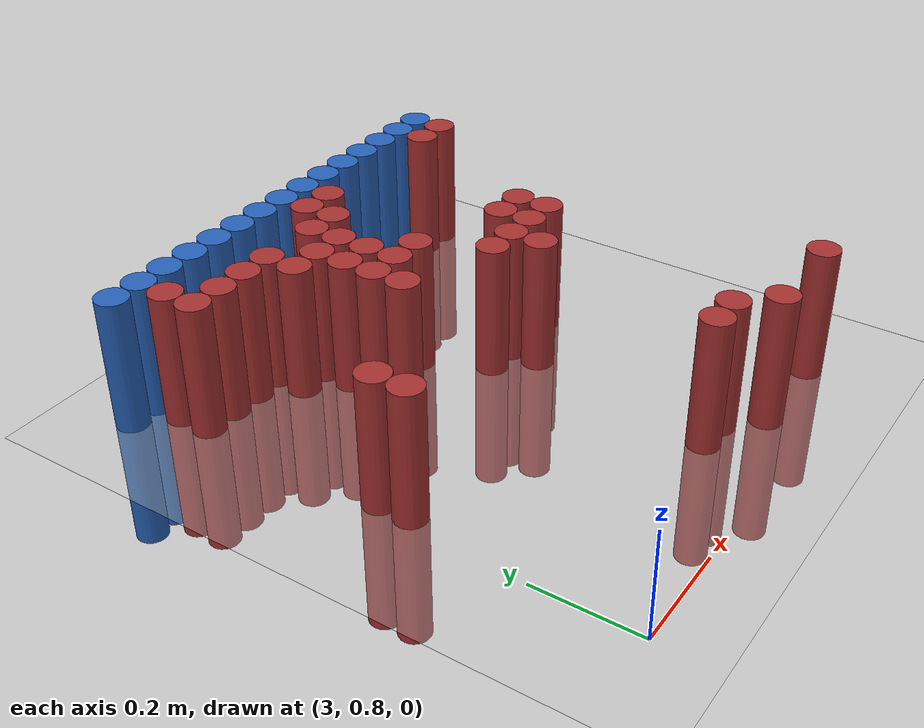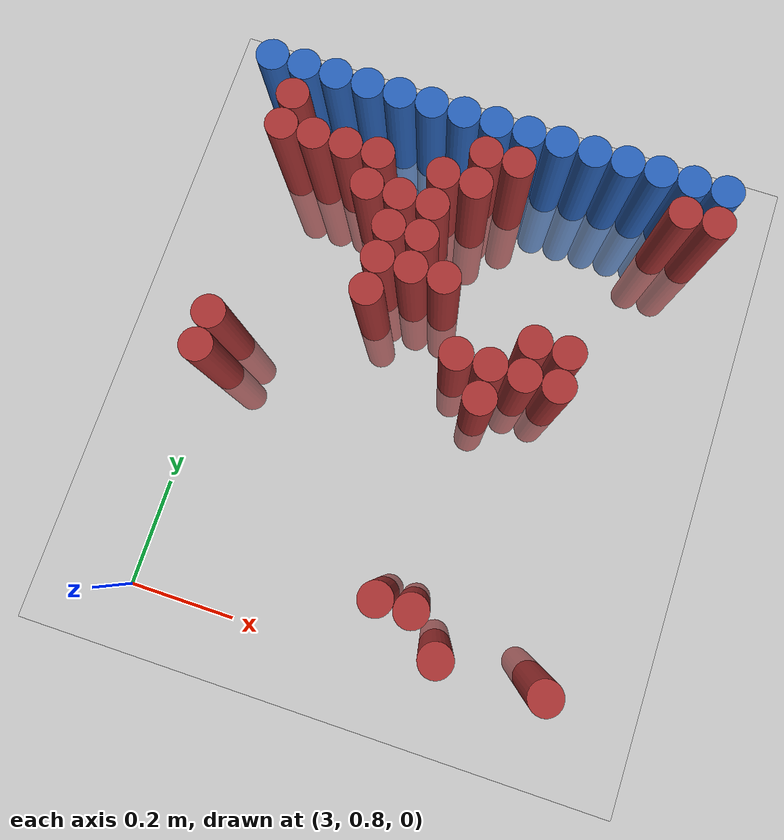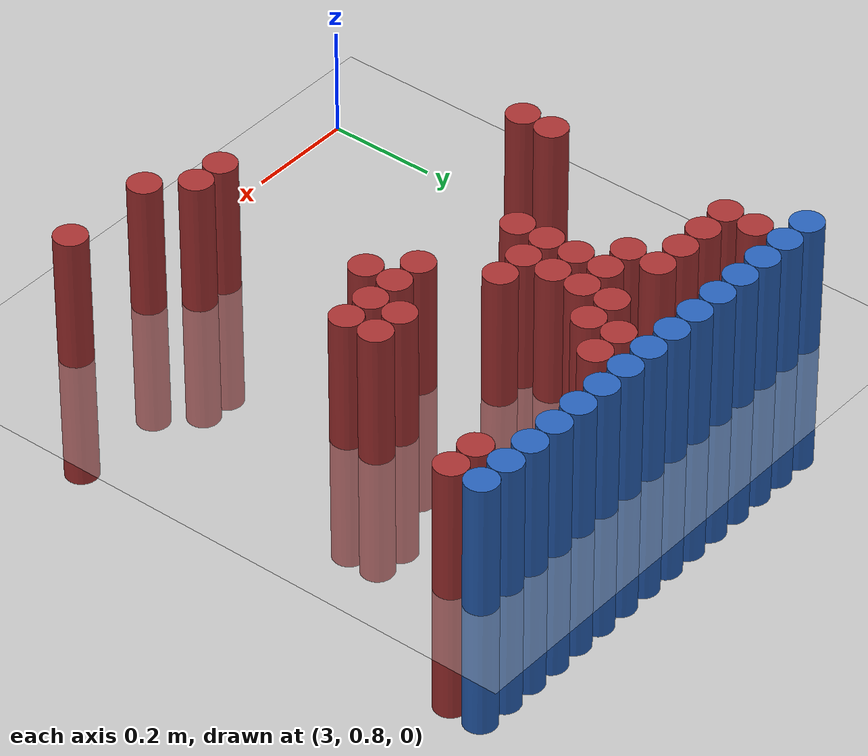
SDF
<sdf version="1.6">
 <world name="default">
  <model name="ground_plane">
   <static>1</static>
   <link name="link">
    <collision name="collision">
     <geometry><plane><normal>0 0 1</normal><size>100 100</size></plane></geometry>
     <surface><friction><ode><mu>100</mu><mu2>50</mu2></ode></friction></surface>
    </collision>
    <visual name="visual">
     <cast_shadows>0</cast_shadows>
     <geometry><plane><normal>0 0 1</normal><size>100 100</size></plane></geometry>
     <material>
      <script><uri>file://media/materials/scripts/gazebo.material</uri><name>Gazebo/Grey</name></script>
     </material>
    </visual>
   </link>
  </model>
  <model name="unit_cylinder_110">
   <static>1</static>
   <pose>2.970000 1.770000 0.000000 0.000000 0.000000 0.000000</pose>
   <link name="link">
    <inertial>
     <mass>1</mass>
     <inertia><ixx>0.145833</ixx><ixy>0</ixy><ixz>0</ixz><iyy>0.145833</iyy><iyz>0</iyz><izz>0.125</izz></inertia>
    </inertial>
    <collision name="collision">
     <geometry><cylinder><radius>0.030000</radius><length>0.5</length></cylinder></geometry>
    </collision>
    <visual name="visual">
     <geometry><cylinder><radius>0.030000</radius><length>0.5</length></cylinder></geometry>
     <material>
      <ambient>0.152000 0.379000 0.720000 1</ambient>
      <diffuse>0.152000 0.379000 0.720000 1</diffuse>
     </material>
     <material>
      <script><name>Gazebo/Grey</name><uri>file://media/materials/scripts/gazebo.material</uri></script>
     </material>
    </visual>
   </link>
  </model>
  <model name="unit_cylinder_111">
   <static>1</static>
   <pose>3.030000 1.770000 0.000000 0.000000 0.000000 0.000000</pose>
   <link name="link">
    <inertial>
     <mass>1</mass>
     <inertia><ixx>0.145833</ixx><ixy>0</ixy><ixz>0</ixz><iyy>0.145833</iyy><iyz>0</iyz><izz>0.125</izz></inertia>
    </inertial>
    <collision name="collision">
     <geometry><cylinder><radius>0.030000</radius><length>0.5</length></cylinder></geometry>
    </collision>
    <visual name="visual">
     <geometry><cylinder><radius>0.030000</radius><length>0.5</length></cylinder></geometry>
     <material>
      <ambient>0.152000 0.379000 0.720000 1</ambient>
      <diffuse>0.152000 0.379000 0.720000 1</diffuse>
     </material>
     <material>
      <script><name>Gazebo/Grey</name><uri>file://media/materials/scripts/gazebo.material</uri></script>
     </material>
    </visual>
   </link>
  </model>
  <model name="unit_cylinder_112">
   <static>1</static>
   <pose>3.090000 1.770000 0.000000 0.000000 0.000000 0.000000</pose>
   <link name="link">
    <inertial>
     <mass>1</mass>
     <inertia><ixx>0.145833</ixx><ixy>0</ixy><ixz>0</ixz><iyy>0.145833</iyy><iyz>0</iyz><izz>0.125</izz></inertia>
    </inertial>
    <collision name="collision">
     <geometry><cylinder><radius>0.030000</radius><length>0.5</length></cylinder></geometry>
    </collision>
    <visual name="visual">
     <geometry><cylinder><radius>0.030000</radius><length>0.5</length></cylinder></geometry>
     <material>
      <ambient>0.152000 0.379000 0.720000 1</ambient>
      <diffuse>0.152000 0.379000 0.720000 1</diffuse>
     </material>
     <material>
      <script><name>Gazebo/Grey</name><uri>file://media/materials/scripts/gazebo.material</uri></script>
     </material>
    </visual>
   </link>
  </model>
  <model name="unit_cylinder_113">
   <static>1</static>
   <pose>3.150000 1.770000 0.000000 0.000000 0.000000 0.000000</pose>
   <link name="link">
    <inertial>
     <mass>1</mass>
     <inertia><ixx>0.145833</ixx><ixy>0</ixy><ixz>0</ixz><iyy>0.145833</iyy><iyz>0</iyz><izz>0.125</izz></inertia>
    </inertial>
    <collision name="collision">
     <geometry><cylinder><radius>0.030000</radius><length>0.5</length></cylinder></geometry>
    </collision>
    <visual name="visual">
     <geometry><cylinder><radius>0.030000</radius><length>0.5</length></cylinder></geometry>
     <material>
      <ambient>0.152000 0.379000 0.720000 1</ambient>
      <diffuse>0.152000 0.379000 0.720000 1</diffuse>
     </material>
     <material>
      <script><name>Gazebo/Grey</name><uri>file://media/materials/scripts/gazebo.material</uri></script>
     </material>
    </visual>
   </link>
  </model>
  <model name="unit_cylinder_114">
   <static>1</static>
   <pose>3.210000 1.770000 0.000000 0.000000 0.000000 0.000000</pose>
   <link name="link">
    <inertial>
     <mass>1</mass>
     <inertia><ixx>0.145833</ixx><ixy>0</ixy><ixz>0</ixz><iyy>0.145833</iyy><iyz>0</iyz><izz>0.125</izz></inertia>
    </inertial>
    <collision name="collision">
     <geometry><cylinder><radius>0.030000</radius><length>0.5</length></cylinder></geometry>
    </collision>
    <visual name="visual">
     <geometry><cylinder><radius>0.030000</radius><length>0.5</length></cylinder></geometry>
     <material>
      <ambient>0.152000 0.379000 0.720000 1</ambient>
      <diffuse>0.152000 0.379000 0.720000 1</diffuse>
     </material>
     <material>
      <script><name>Gazebo/Grey</name><uri>file://media/materials/scripts/gazebo.material</uri></script>
     </material>
    </visual>
   </link>
  </model>
  <model name="unit_cylinder_115">
   <static>1</static>
   <pose>3.270000 1.770000 0.000000 0.000000 0.000000 0.000000</pose>
   <link name="link">
    <inertial>
     <mass>1</mass>
     <inertia><ixx>0.145833</ixx><ixy>0</ixy><ixz>0</ixz><iyy>0.145833</iyy><iyz>0</iyz><izz>0.125</izz></inertia>
    </inertial>
    <collision name="collision">
     <geometry><cylinder><radius>0.030000</radius><length>0.5</length></cylinder></geometry>
    </collision>
    <visual name="visual">
     <geometry><cylinder><radius>0.030000</radius><length>0.5</length></cylinder></geometry>
     <material>
      <ambient>0.152000 0.379000 0.720000 1</ambient>
      <diffuse>0.152000 0.379000 0.720000 1</diffuse>
     </material>
     <material>
      <script><name>Gazebo/Grey</name><uri>file://media/materials/scripts/gazebo.material</uri></script>
     </material>
    </visual>
   </link>
  </model>
  <model name="unit_cylinder_116">
   <static>1</static>
   <pose>3.330000 1.770000 0.000000 0.000000 0.000000 0.000000</pose>
   <link name="link">
    <inertial>
     <mass>1</mass>
     <inertia><ixx>0.145833</ixx><ixy>0</ixy><ixz>0</ixz><iyy>0.145833</iyy><iyz>0</iyz><izz>0.125</izz></inertia>
    </inertial>
    <collision name="collision">
     <geometry><cylinder><radius>0.030000</radius><length>0.5</length></cylinder></geometry>
    </collision>
    <visual name="visual">
     <geometry><cylinder><radius>0.030000</radius><length>0.5</length></cylinder></geometry>
     <material>
      <ambient>0.152000 0.379000 0.720000 1</ambient>
      <diffuse>0.152000 0.379000 0.720000 1</diffuse>
     </material>
     <material>
      <script><name>Gazebo/Grey</name><uri>file://media/materials/scripts/gazebo.material</uri></script>
     </material>
    </visual>
   </link>
  </model>
  <model name="unit_cylinder_117">
   <static>1</static>
   <pose>3.390000 1.770000 0.000000 0.000000 0.000000 0.000000</pose>
   <link name="link">
    <inertial>
     <mass>1</mass>
     <inertia><ixx>0.145833</ixx><ixy>0</ixy><ixz>0</ixz><iyy>0.145833</iyy><iyz>0</iyz><izz>0.125</izz></inertia>
    </inertial>
    <collision name="collision">
     <geometry><cylinder><radius>0.030000</radius><length>0.5</length></cylinder></geometry>
    </collision>
    <visual name="visual">
     <geometry><cylinder><radius>0.030000</radius><length>0.5</length></cylinder></geometry>
     <material>
      <ambient>0.152000 0.379000 0.720000 1</ambient>
      <diffuse>0.152000 0.379000 0.720000 1</diffuse>
     </material>
     <material>
      <script><name>Gazebo/Grey</name><uri>file://media/materials/scripts/gazebo.material</uri></script>
     </material>
    </visual>
   </link>
  </model>
  <model name="unit_cylinder_118">
   <static>1</static>
   <pose>3.450000 1.770000 0.000000 0.000000 0.000000 0.000000</pose>
   <link name="link">
    <inertial>
     <mass>1</mass>
     <inertia><ixx>0.145833</ixx><ixy>0</ixy><ixz>0</ixz><iyy>0.145833</iyy><iyz>0</iyz><izz>0.125</izz></inertia>
    </inertial>
    <collision name="collision">
     <geometry><cylinder><radius>0.030000</radius><length>0.5</length></cylinder></geometry>
    </collision>
    <visual name="visual">
     <geometry><cylinder><radius>0.030000</radius><length>0.5</length></cylinder></geometry>
     <material>
      <ambient>0.152000 0.379000 0.720000 1</ambient>
      <diffuse>0.152000 0.379000 0.720000 1</diffuse>
     </material>
     <material>
      <script><name>Gazebo/Grey</name><uri>file://media/materials/scripts/gazebo.material</uri></script>
     </material>
    </visual>
   </link>
  </model>
  <model name="unit_cylinder_119">
   <static>1</static>
   <pose>3.510000 1.770000 0.000000 0.000000 0.000000 0.000000</pose>
   <link name="link">
    <inertial>
     <mass>1</mass>
     <inertia><ixx>0.145833</ixx><ixy>0</ixy><ixz>0</ixz><iyy>0.145833</iyy><iyz>0</iyz><izz>0.125</izz></inertia>
    </inertial>
    <collision name="collision">
     <geometry><cylinder><radius>0.030000</radius><length>0.5</length></cylinder></geometry>
    </collision>
    <visual name="visual">
     <geometry><cylinder><radius>0.030000</radius><length>0.5</length></cylinder></geometry>
     <material>
      <ambient>0.152000 0.379000 0.720000 1</ambient>
      <diffuse>0.152000 0.379000 0.720000 1</diffuse>
     </material>
     <material>
      <script><name>Gazebo/Grey</name><uri>file://media/materials/scripts/gazebo.material</uri></script>
     </material>
    </visual>
   </link>
  </model>
  <model name="unit_cylinder_120">
   <static>1</static>
   <pose>3.570000 1.770000 0.000000 0.000000 0.000000 0.000000</pose>
   <link name="link">
    <inertial>
     <mass>1</mass>
     <inertia><ixx>0.145833</ixx><ixy>0</ixy><ixz>0</ixz><iyy>0.145833</iyy><iyz>0</iyz><izz>0.125</izz></inertia>
    </inertial>
    <collision name="collision">
     <geometry><cylinder><radius>0.030000</radius><length>0.5</length></cylinder></geometry>
    </collision>
    <visual name="visual">
     <geometry><cylinder><radius>0.030000</radius><length>0.5</length></cylinder></geometry>
     <material>
      <ambient>0.152000 0.379000 0.720000 1</ambient>
      <diffuse>0.152000 0.379000 0.720000 1</diffuse>
     </material>
     <material>
      <script><name>Gazebo/Grey</name><uri>file://media/materials/scripts/gazebo.material</uri></script>
     </material>
    </visual>
   </link>
  </model>
  <model name="unit_cylinder_121">
   <static>1</static>
   <pose>3.630000 1.770000 0.000000 0.000000 0.000000 0.000000</pose>
   <link name="link">
    <inertial>
     <mass>1</mass>
     <inertia><ixx>0.145833</ixx><ixy>0</ixy><ixz>0</ixz><iyy>0.145833</iyy><iyz>0</iyz><izz>0.125</izz></inertia>
    </inertial>
    <collision name="collision">
     <geometry><cylinder><radius>0.030000</radius><length>0.5</length></cylinder></geometry>
    </collision>
    <visual name="visual">
     <geometry><cylinder><radius>0.030000</radius><length>0.5</length></cylinder></geometry>
     <material>
      <ambient>0.152000 0.379000 0.720000 1</ambient>
      <diffuse>0.152000 0.379000 0.720000 1</diffuse>
     </material>
     <material>
      <script><name>Gazebo/Grey</name><uri>file://media/materials/scripts/gazebo.material</uri></script>
     </material>
    </visual>
   </link>
  </model>
  <model name="unit_cylinder_122">
   <static>1</static>
   <pose>3.690000 1.770000 0.000000 0.000000 0.000000 0.000000</pose>
   <link name="link">
    <inertial>
     <mass>1</mass>
     <inertia><ixx>0.145833</ixx><ixy>0</ixy><ixz>0</ixz><iyy>0.145833</iyy><iyz>0</iyz><izz>0.125</izz></inertia>
    </inertial>
    <collision name="collision">
     <geometry><cylinder><radius>0.030000</radius><length>0.5</length></cylinder></geometry>
    </collision>
    <visual name="visual">
     <geometry><cylinder><radius>0.030000</radius><length>0.5</length></cylinder></geometry>
     <material>
      <ambient>0.152000 0.379000 0.720000 1</ambient>
      <diffuse>0.152000 0.379000 0.720000 1</diffuse>
     </material>
     <material>
      <script><name>Gazebo/Grey</name><uri>file://media/materials/scripts/gazebo.material</uri></script>
     </material>
    </visual>
   </link>
  </model>
  <model name="unit_cylinder_123">
   <static>1</static>
   <pose>3.750000 1.770000 0.000000 0.000000 0.000000 0.000000</pose>
   <link name="link">
    <inertial>
     <mass>1</mass>
     <inertia><ixx>0.145833</ixx><ixy>0</ixy><ixz>0</ixz><iyy>0.145833</iyy><iyz>0</iyz><izz>0.125</izz></inertia>
    </inertial>
    <collision name="collision">
     <geometry><cylinder><radius>0.030000</radius><length>0.5</length></cylinder></geometry>
    </collision>
    <visual name="visual">
     <geometry><cylinder><radius>0.030000</radius><length>0.5</length></cylinder></geometry>
     <material>
      <ambient>0.152000 0.379000 0.720000 1</ambient>
      <diffuse>0.152000 0.379000 0.720000 1</diffuse>
     </material>
     <material>
      <script><name>Gazebo/Grey</name><uri>file://media/materials/scripts/gazebo.material</uri></script>
     </material>
    </visual>
   </link>
  </model>
  <model name="unit_cylinder_124">
   <static>1</static>
   <pose>3.810000 1.770000 0.000000 0.000000 0.000000 0.000000</pose>
   <link name="link">
    <inertial>
     <mass>1</mass>
     <inertia><ixx>0.145833</ixx><ixy>0</ixy><ixz>0</ixz><iyy>0.145833</iyy><iyz>0</iyz><izz>0.125</izz></inertia>
    </inertial>
    <collision name="collision">
     <geometry><cylinder><radius>0.030000</radius><length>0.5</length></cylinder></geometry>
    </collision>
    <visual name="visual">
     <geometry><cylinder><radius>0.030000</radius><length>0.5</length></cylinder></geometry>
     <material>
      <ambient>0.152000 0.379000 0.720000 1</ambient>
      <diffuse>0.152000 0.379000 0.720000 1</diffuse>
     </material>
     <material>
      <script><name>Gazebo/Grey</name><uri>file://media/materials/scripts/gazebo.material</uri></script>
     </material>
    </visual>
   </link>
  </model>
  <model name="unit_cylinder_129">
   <static>1</static>
   <pose>3.030000 1.710000 0.000000 0.000000 0.000000 0.000000</pose>
   <link name="link">
    <inertial>
     <mass>1</mass>
     <inertia><ixx>0.145833</ixx><ixy>0</ixy><ixz>0</ixz><iyy>0.145833</iyy><iyz>0</iyz><izz>0.125</izz></inertia>
    </inertial>
    <collision name="collision">
     <geometry><cylinder><radius>0.030000</radius><length>0.5</length></cylinder></geometry>
    </collision>
    <visual name="visual">
     <geometry><cylinder><radius>0.030000</radius><length>0.5</length></cylinder></geometry>
     <material>
      <ambient>0.648000 0.192000 0.192000 1</ambient>
      <diffuse>0.648000 0.192000 0.192000 1</diffuse>
     </material>
     <material>
      <script><name>Gazebo/Grey</name><uri>file://media/materials/scripts/gazebo.material</uri></script>
     </material>
    </visual>
   </link>
  </model>
  <model name="unit_cylinder_130">
   <static>1</static>
   <pose>3.390000 1.710000 0.000000 0.000000 0.000000 0.000000</pose>
   <link name="link">
    <inertial>
     <mass>1</mass>
     <inertia><ixx>0.145833</ixx><ixy>0</ixy><ixz>0</ixz><iyy>0.145833</iyy><iyz>0</iyz><izz>0.125</izz></inertia>
    </inertial>
    <collision name="collision">
     <geometry><cylinder><radius>0.030000</radius><length>0.5</length></cylinder></geometry>
    </collision>
    <visual name="visual">
     <geometry><cylinder><radius>0.030000</radius><length>0.5</length></cylinder></geometry>
     <material>
      <ambient>0.648000 0.192000 0.192000 1</ambient>
      <diffuse>0.648000 0.192000 0.192000 1</diffuse>
     </material>
     <material>
      <script><name>Gazebo/Grey</name><uri>file://media/materials/scripts/gazebo.material</uri></script>
     </material>
    </visual>
   </link>
  </model>
  <model name="unit_cylinder_131">
   <static>1</static>
   <pose>3.450000 1.710000 0.000000 0.000000 0.000000 0.000000</pose>
   <link name="link">
    <inertial>
     <mass>1</mass>
     <inertia><ixx>0.145833</ixx><ixy>0</ixy><ixz>0</ixz><iyy>0.145833</iyy><iyz>0</iyz><izz>0.125</izz></inertia>
    </inertial>
    <collision name="collision">
     <geometry><cylinder><radius>0.030000</radius><length>0.5</length></cylinder></geometry>
    </collision>
    <visual name="visual">
     <geometry><cylinder><radius>0.030000</radius><length>0.5</length></cylinder></geometry>
     <material>
      <ambient>0.648000 0.192000 0.192000 1</ambient>
      <diffuse>0.648000 0.192000 0.192000 1</diffuse>
     </material>
     <material>
      <script><name>Gazebo/Grey</name><uri>file://media/materials/scripts/gazebo.material</uri></script>
     </material>
    </visual>
   </link>
  </model>
  <model name="unit_cylinder_132">
   <static>1</static>
   <pose>3.750000 1.710000 0.000000 0.000000 0.000000 0.000000</pose>
   <link name="link">
    <inertial>
     <mass>1</mass>
     <inertia><ixx>0.145833</ixx><ixy>0</ixy><ixz>0</ixz><iyy>0.145833</iyy><iyz>0</iyz><izz>0.125</izz></inertia>
    </inertial>
    <collision name="collision">
     <geometry><cylinder><radius>0.030000</radius><length>0.5</length></cylinder></geometry>
    </collision>
    <visual name="visual">
     <geometry><cylinder><radius>0.030000</radius><length>0.5</length></cylinder></geometry>
     <material>
      <ambient>0.648000 0.192000 0.192000 1</ambient>
      <diffuse>0.648000 0.192000 0.192000 1</diffuse>
     </material>
     <material>
      <script><name>Gazebo/Grey</name><uri>file://media/materials/scripts/gazebo.material</uri></script>
     </material>
    </visual>
   </link>
  </model>
  <model name="unit_cylinder_133">
   <static>1</static>
   <pose>3.810000 1.710000 0.000000 0.000000 0.000000 0.000000</pose>
   <link name="link">
    <inertial>
     <mass>1</mass>
     <inertia><ixx>0.145833</ixx><ixy>0</ixy><ixz>0</ixz><iyy>0.145833</iyy><iyz>0</iyz><izz>0.125</izz></inertia>
    </inertial>
    <collision name="collision">
     <geometry><cylinder><radius>0.030000</radius><length>0.5</length></cylinder></geometry>
    </collision>
    <visual name="visual">
     <geometry><cylinder><radius>0.030000</radius><length>0.5</length></cylinder></geometry>
     <material>
      <ambient>0.648000 0.192000 0.192000 1</ambient>
      <diffuse>0.648000 0.192000 0.192000 1</diffuse>
     </material>
     <material>
      <script><name>Gazebo/Grey</name><uri>file://media/materials/scripts/gazebo.material</uri></script>
     </material>
    </visual>
   </link>
  </model>
  <model name="unit_cylinder_140">
   <static>1</static>
   <pose>3.030000 1.650000 0.000000 0.000000 0.000000 0.000000</pose>
   <link name="link">
    <inertial>
     <mass>1</mass>
     <inertia><ixx>0.145833</ixx><ixy>0</ixy><ixz>0</ixz><iyy>0.145833</iyy><iyz>0</iyz><izz>0.125</izz></inertia>
    </inertial>
    <collision name="collision">
     <geometry><cylinder><radius>0.030000</radius><length>0.5</length></cylinder></geometry>
    </collision>
    <visual name="visual">
     <geometry><cylinder><radius>0.030000</radius><length>0.5</length></cylinder></geometry>
     <material>
      <ambient>0.648000 0.192000 0.192000 1</ambient>
      <diffuse>0.648000 0.192000 0.192000 1</diffuse>
     </material>
     <material>
      <script><name>Gazebo/Grey</name><uri>file://media/materials/scripts/gazebo.material</uri></script>
     </material>
    </visual>
   </link>
  </model>
  <model name="unit_cylinder_141">
   <static>1</static>
   <pose>3.090000 1.650000 0.000000 0.000000 0.000000 0.000000</pose>
   <link name="link">
    <inertial>
     <mass>1</mass>
     <inertia><ixx>0.145833</ixx><ixy>0</ixy><ixz>0</ixz><iyy>0.145833</iyy><iyz>0</iyz><izz>0.125</izz></inertia>
    </inertial>
    <collision name="collision">
     <geometry><cylinder><radius>0.030000</radius><length>0.5</length></cylinder></geometry>
    </collision>
    <visual name="visual">
     <geometry><cylinder><radius>0.030000</radius><length>0.5</length></cylinder></geometry>
     <material>
      <ambient>0.648000 0.192000 0.192000 1</ambient>
      <diffuse>0.648000 0.192000 0.192000 1</diffuse>
     </material>
     <material>
      <script><name>Gazebo/Grey</name><uri>file://media/materials/scripts/gazebo.material</uri></script>
     </material>
    </visual>
   </link>
  </model>
  <model name="unit_cylinder_142">
   <static>1</static>
   <pose>3.150000 1.650000 0.000000 0.000000 0.000000 0.000000</pose>
   <link name="link">
    <inertial>
     <mass>1</mass>
     <inertia><ixx>0.145833</ixx><ixy>0</ixy><ixz>0</ixz><iyy>0.145833</iyy><iyz>0</iyz><izz>0.125</izz></inertia>
    </inertial>
    <collision name="collision">
     <geometry><cylinder><radius>0.030000</radius><length>0.5</length></cylinder></geometry>
    </collision>
    <visual name="visual">
     <geometry><cylinder><radius>0.030000</radius><length>0.5</length></cylinder></geometry>
     <material>
      <ambient>0.648000 0.192000 0.192000 1</ambient>
      <diffuse>0.648000 0.192000 0.192000 1</diffuse>
     </material>
     <material>
      <script><name>Gazebo/Grey</name><uri>file://media/materials/scripts/gazebo.material</uri></script>
     </material>
    </visual>
   </link>
  </model>
  <model name="unit_cylinder_143">
   <static>1</static>
   <pose>3.210000 1.650000 0.000000 0.000000 0.000000 0.000000</pose>
   <link name="link">
    <inertial>
     <mass>1</mass>
     <inertia><ixx>0.145833</ixx><ixy>0</ixy><ixz>0</ixz><iyy>0.145833</iyy><iyz>0</iyz><izz>0.125</izz></inertia>
    </inertial>
    <collision name="collision">
     <geometry><cylinder><radius>0.030000</radius><length>0.5</length></cylinder></geometry>
    </collision>
    <visual name="visual">
     <geometry><cylinder><radius>0.030000</radius><length>0.5</length></cylinder></geometry>
     <material>
      <ambient>0.648000 0.192000 0.192000 1</ambient>
      <diffuse>0.648000 0.192000 0.192000 1</diffuse>
     </material>
     <material>
      <script><name>Gazebo/Grey</name><uri>file://media/materials/scripts/gazebo.material</uri></script>
     </material>
    </visual>
   </link>
  </model>
  <model name="unit_cylinder_144">
   <static>1</static>
   <pose>3.330000 1.650000 0.000000 0.000000 0.000000 0.000000</pose>
   <link name="link">
    <inertial>
     <mass>1</mass>
     <inertia><ixx>0.145833</ixx><ixy>0</ixy><ixz>0</ixz><iyy>0.145833</iyy><iyz>0</iyz><izz>0.125</izz></inertia>
    </inertial>
    <collision name="collision">
     <geometry><cylinder><radius>0.030000</radius><length>0.5</length></cylinder></geometry>
    </collision>
    <visual name="visual">
     <geometry><cylinder><radius>0.030000</radius><length>0.5</length></cylinder></geometry>
     <material>
      <ambient>0.648000 0.192000 0.192000 1</ambient>
      <diffuse>0.648000 0.192000 0.192000 1</diffuse>
     </material>
     <material>
      <script><name>Gazebo/Grey</name><uri>file://media/materials/scripts/gazebo.material</uri></script>
     </material>
    </visual>
   </link>
  </model>
  <model name="unit_cylinder_145">
   <static>1</static>
   <pose>3.390000 1.650000 0.000000 0.000000 0.000000 0.000000</pose>
   <link name="link">
    <inertial>
     <mass>1</mass>
     <inertia><ixx>0.145833</ixx><ixy>0</ixy><ixz>0</ixz><iyy>0.145833</iyy><iyz>0</iyz><izz>0.125</izz></inertia>
    </inertial>
    <collision name="collision">
     <geometry><cylinder><radius>0.030000</radius><length>0.5</length></cylinder></geometry>
    </collision>
    <visual name="visual">
     <geometry><cylinder><radius>0.030000</radius><length>0.5</length></cylinder></geometry>
     <material>
      <ambient>0.648000 0.192000 0.192000 1</ambient>
      <diffuse>0.648000 0.192000 0.192000 1</diffuse>
     </material>
     <material>
      <script><name>Gazebo/Grey</name><uri>file://media/materials/scripts/gazebo.material</uri></script>
     </material>
    </visual>
   </link>
  </model>
  <model name="unit_cylinder_155">
   <static>1</static>
   <pose>3.210000 1.590000 0.000000 0.000000 0.000000 0.000000</pose>
   <link name="link">
    <inertial>
     <mass>1</mass>
     <inertia><ixx>0.145833</ixx><ixy>0</ixy><ixz>0</ixz><iyy>0.145833</iyy><iyz>0</iyz><izz>0.125</izz></inertia>
    </inertial>
    <collision name="collision">
     <geometry><cylinder><radius>0.030000</radius><length>0.5</length></cylinder></geometry>
    </collision>
    <visual name="visual">
     <geometry><cylinder><radius>0.030000</radius><length>0.5</length></cylinder></geometry>
     <material>
      <ambient>0.648000 0.192000 0.192000 1</ambient>
      <diffuse>0.648000 0.192000 0.192000 1</diffuse>
     </material>
     <material>
      <script><name>Gazebo/Grey</name><uri>file://media/materials/scripts/gazebo.material</uri></script>
     </material>
    </visual>
   </link>
  </model>
  <model name="unit_cylinder_156">
   <static>1</static>
   <pose>3.270000 1.590000 0.000000 0.000000 0.000000 0.000000</pose>
   <link name="link">
    <inertial>
     <mass>1</mass>
     <inertia><ixx>0.145833</ixx><ixy>0</ixy><ixz>0</ixz><iyy>0.145833</iyy><iyz>0</iyz><izz>0.125</izz></inertia>
    </inertial>
    <collision name="collision">
     <geometry><cylinder><radius>0.030000</radius><length>0.5</length></cylinder></geometry>
    </collision>
    <visual name="visual">
     <geometry><cylinder><radius>0.030000</radius><length>0.5</length></cylinder></geometry>
     <material>
      <ambient>0.648000 0.192000 0.192000 1</ambient>
      <diffuse>0.648000 0.192000 0.192000 1</diffuse>
     </material>
     <material>
      <script><name>Gazebo/Grey</name><uri>file://media/materials/scripts/gazebo.material</uri></script>
     </material>
    </visual>
   </link>
  </model>
  <model name="unit_cylinder_157">
   <static>1</static>
   <pose>3.330000 1.590000 0.000000 0.000000 0.000000 0.000000</pose>
   <link name="link">
    <inertial>
     <mass>1</mass>
     <inertia><ixx>0.145833</ixx><ixy>0</ixy><ixz>0</ixz><iyy>0.145833</iyy><iyz>0</iyz><izz>0.125</izz></inertia>
    </inertial>
    <collision name="collision">
     <geometry><cylinder><radius>0.030000</radius><length>0.5</length></cylinder></geometry>
    </collision>
    <visual name="visual">
     <geometry><cylinder><radius>0.030000</radius><length>0.5</length></cylinder></geometry>
     <material>
      <ambient>0.648000 0.192000 0.192000 1</ambient>
      <diffuse>0.648000 0.192000 0.192000 1</diffuse>
     </material>
     <material>
      <script><name>Gazebo/Grey</name><uri>file://media/materials/scripts/gazebo.material</uri></script>
     </material>
    </visual>
   </link>
  </model>
  <model name="unit_cylinder_163">
   <static>1</static>
   <pose>3.270000 1.530000 0.000000 0.000000 0.000000 0.000000</pose>
   <link name="link">
    <inertial>
     <mass>1</mass>
     <inertia><ixx>0.145833</ixx><ixy>0</ixy><ixz>0</ixz><iyy>0.145833</iyy><iyz>0</iyz><izz>0.125</izz></inertia>
    </inertial>
    <collision name="collision">
     <geometry><cylinder><radius>0.030000</radius><length>0.5</length></cylinder></geometry>
    </collision>
    <visual name="visual">
     <geometry><cylinder><radius>0.030000</radius><length>0.5</length></cylinder></geometry>
     <material>
      <ambient>0.648000 0.192000 0.192000 1</ambient>
      <diffuse>0.648000 0.192000 0.192000 1</diffuse>
     </material>
     <material>
      <script><name>Gazebo/Grey</name><uri>file://media/materials/scripts/gazebo.material</uri></script>
     </material>
    </visual>
   </link>
  </model>
  <model name="unit_cylinder_164">
   <static>1</static>
   <pose>3.330000 1.530000 0.000000 0.000000 0.000000 0.000000</pose>
   <link name="link">
    <inertial>
     <mass>1</mass>
     <inertia><ixx>0.145833</ixx><ixy>0</ixy><ixz>0</ixz><iyy>0.145833</iyy><iyz>0</iyz><izz>0.125</izz></inertia>
    </inertial>
    <collision name="collision">
     <geometry><cylinder><radius>0.030000</radius><length>0.5</length></cylinder></geometry>
    </collision>
    <visual name="visual">
     <geometry><cylinder><radius>0.030000</radius><length>0.5</length></cylinder></geometry>
     <material>
      <ambient>0.648000 0.192000 0.192000 1</ambient>
      <diffuse>0.648000 0.192000 0.192000 1</diffuse>
     </material>
     <material>
      <script><name>Gazebo/Grey</name><uri>file://media/materials/scripts/gazebo.material</uri></script>
     </material>
    </visual>
   </link>
  </model>
  <model name="unit_cylinder_168">
   <static>1</static>
   <pose>3.270000 1.470000 0.000000 0.000000 0.000000 0.000000</pose>
   <link name="link">
    <inertial>
     <mass>1</mass>
     <inertia><ixx>0.145833</ixx><ixy>0</ixy><ixz>0</ixz><iyy>0.145833</iyy><iyz>0</iyz><izz>0.125</izz></inertia>
    </inertial>
    <collision name="collision">
     <geometry><cylinder><radius>0.030000</radius><length>0.5</length></cylinder></geometry>
    </collision>
    <visual name="visual">
     <geometry><cylinder><radius>0.030000</radius><length>0.5</length></cylinder></geometry>
     <material>
      <ambient>0.648000 0.192000 0.192000 1</ambient>
      <diffuse>0.648000 0.192000 0.192000 1</diffuse>
     </material>
     <material>
      <script><name>Gazebo/Grey</name><uri>file://media/materials/scripts/gazebo.material</uri></script>
     </material>
    </visual>
   </link>
  </model>
  <model name="unit_cylinder_169">
   <static>1</static>
   <pose>3.330000 1.470000 0.000000 0.000000 0.000000 0.000000</pose>
   <link name="link">
    <inertial>
     <mass>1</mass>
     <inertia><ixx>0.145833</ixx><ixy>0</ixy><ixz>0</ixz><iyy>0.145833</iyy><iyz>0</iyz><izz>0.125</izz></inertia>
    </inertial>
    <collision name="collision">
     <geometry><cylinder><radius>0.030000</radius><length>0.5</length></cylinder></geometry>
    </collision>
    <visual name="visual">
     <geometry><cylinder><radius>0.030000</radius><length>0.5</length></cylinder></geometry>
     <material>
      <ambient>0.648000 0.192000 0.192000 1</ambient>
      <diffuse>0.648000 0.192000 0.192000 1</diffuse>
     </material>
     <material>
      <script><name>Gazebo/Grey</name><uri>file://media/materials/scripts/gazebo.material</uri></script>
     </material>
    </visual>
   </link>
  </model>
  <model name="unit_cylinder_170">
   <static>1</static>
   <pose>3.390000 1.470000 0.000000 0.000000 0.000000 0.000000</pose>
   <link name="link">
    <inertial>
     <mass>1</mass>
     <inertia><ixx>0.145833</ixx><ixy>0</ixy><ixz>0</ixz><iyy>0.145833</iyy><iyz>0</iyz><izz>0.125</izz></inertia>
    </inertial>
    <collision name="collision">
     <geometry><cylinder><radius>0.030000</radius><length>0.5</length></cylinder></geometry>
    </collision>
    <visual name="visual">
     <geometry><cylinder><radius>0.030000</radius><length>0.5</length></cylinder></geometry>
     <material>
      <ambient>0.648000 0.192000 0.192000 1</ambient>
      <diffuse>0.648000 0.192000 0.192000 1</diffuse>
     </material>
     <material>
      <script><name>Gazebo/Grey</name><uri>file://media/materials/scripts/gazebo.material</uri></script>
     </material>
    </visual>
   </link>
  </model>
  <model name="unit_cylinder_174">
   <static>1</static>
   <pose>3.270000 1.410000 0.000000 0.000000 0.000000 0.000000</pose>
   <link name="link">
    <inertial>
     <mass>1</mass>
     <inertia><ixx>0.145833</ixx><ixy>0</ixy><ixz>0</ixz><iyy>0.145833</iyy><iyz>0</iyz><izz>0.125</izz></inertia>
    </inertial>
    <collision name="collision">
     <geometry><cylinder><radius>0.030000</radius><length>0.5</length></cylinder></geometry>
    </collision>
    <visual name="visual">
     <geometry><cylinder><radius>0.030000</radius><length>0.5</length></cylinder></geometry>
     <material>
      <ambient>0.648000 0.192000 0.192000 1</ambient>
      <diffuse>0.648000 0.192000 0.192000 1</diffuse>
     </material>
     <material>
      <script><name>Gazebo/Grey</name><uri>file://media/materials/scripts/gazebo.material</uri></script>
     </material>
    </visual>
   </link>
  </model>
  <model name="unit_cylinder_175">
   <static>1</static>
   <pose>3.570000 1.410000 0.000000 0.000000 0.000000 0.000000</pose>
   <link name="link">
    <inertial>
     <mass>1</mass>
     <inertia><ixx>0.145833</ixx><ixy>0</ixy><ixz>0</ixz><iyy>0.145833</iyy><iyz>0</iyz><izz>0.125</izz></inertia>
    </inertial>
    <collision name="collision">
     <geometry><cylinder><radius>0.030000</radius><length>0.5</length></cylinder></geometry>
    </collision>
    <visual name="visual">
     <geometry><cylinder><radius>0.030000</radius><length>0.5</length></cylinder></geometry>
     <material>
      <ambient>0.648000 0.192000 0.192000 1</ambient>
      <diffuse>0.648000 0.192000 0.192000 1</diffuse>
     </material>
     <material>
      <script><name>Gazebo/Grey</name><uri>file://media/materials/scripts/gazebo.material</uri></script>
     </material>
    </visual>
   </link>
  </model>
  <model name="unit_cylinder_176">
   <static>1</static>
   <pose>3.630000 1.410000 0.000000 0.000000 0.000000 0.000000</pose>
   <link name="link">
    <inertial>
     <mass>1</mass>
     <inertia><ixx>0.145833</ixx><ixy>0</ixy><ixz>0</ixz><iyy>0.145833</iyy><iyz>0</iyz><izz>0.125</izz></inertia>
    </inertial>
    <collision name="collision">
     <geometry><cylinder><radius>0.030000</radius><length>0.5</length></cylinder></geometry>
    </collision>
    <visual name="visual">
     <geometry><cylinder><radius>0.030000</radius><length>0.5</length></cylinder></geometry>
     <material>
      <ambient>0.648000 0.192000 0.192000 1</ambient>
      <diffuse>0.648000 0.192000 0.192000 1</diffuse>
     </material>
     <material>
      <script><name>Gazebo/Grey</name><uri>file://media/materials/scripts/gazebo.material</uri></script>
     </material>
    </visual>
   </link>
  </model>
  <model name="unit_cylinder_180">
   <static>1</static>
   <pose>3.450000 1.350000 0.000000 0.000000 0.000000 0.000000</pose>
   <link name="link">
    <inertial>
     <mass>1</mass>
     <inertia><ixx>0.145833</ixx><ixy>0</ixy><ixz>0</ixz><iyy>0.145833</iyy><iyz>0</iyz><izz>0.125</izz></inertia>
    </inertial>
    <collision name="collision">
     <geometry><cylinder><radius>0.030000</radius><length>0.5</length></cylinder></geometry>
    </collision>
    <visual name="visual">
     <geometry><cylinder><radius>0.030000</radius><length>0.5</length></cylinder></geometry>
     <material>
      <ambient>0.648000 0.192000 0.192000 1</ambient>
      <diffuse>0.648000 0.192000 0.192000 1</diffuse>
     </material>
     <material>
      <script><name>Gazebo/Grey</name><uri>file://media/materials/scripts/gazebo.material</uri></script>
     </material>
    </visual>
   </link>
  </model>
  <model name="unit_cylinder_181">
   <static>1</static>
   <pose>3.510000 1.350000 0.000000 0.000000 0.000000 0.000000</pose>
   <link name="link">
    <inertial>
     <mass>1</mass>
     <inertia><ixx>0.145833</ixx><ixy>0</ixy><ixz>0</ixz><iyy>0.145833</iyy><iyz>0</iyz><izz>0.125</izz></inertia>
    </inertial>
    <collision name="collision">
     <geometry><cylinder><radius>0.030000</radius><length>0.5</length></cylinder></geometry>
    </collision>
    <visual name="visual">
     <geometry><cylinder><radius>0.030000</radius><length>0.5</length></cylinder></geometry>
     <material>
      <ambient>0.648000 0.192000 0.192000 1</ambient>
      <diffuse>0.648000 0.192000 0.192000 1</diffuse>
     </material>
     <material>
      <script><name>Gazebo/Grey</name><uri>file://media/materials/scripts/gazebo.material</uri></script>
     </material>
    </visual>
   </link>
  </model>
  <model name="unit_cylinder_182">
   <static>1</static>
   <pose>3.570000 1.350000 0.000000 0.000000 0.000000 0.000000</pose>
   <link name="link">
    <inertial>
     <mass>1</mass>
     <inertia><ixx>0.145833</ixx><ixy>0</ixy><ixz>0</ixz><iyy>0.145833</iyy><iyz>0</iyz><izz>0.125</izz></inertia>
    </inertial>
    <collision name="collision">
     <geometry><cylinder><radius>0.030000</radius><length>0.5</length></cylinder></geometry>
    </collision>
    <visual name="visual">
     <geometry><cylinder><radius>0.030000</radius><length>0.5</length></cylinder></geometry>
     <material>
      <ambient>0.648000 0.192000 0.192000 1</ambient>
      <diffuse>0.648000 0.192000 0.192000 1</diffuse>
     </material>
     <material>
      <script><name>Gazebo/Grey</name><uri>file://media/materials/scripts/gazebo.material</uri></script>
     </material>
    </visual>
   </link>
  </model>
  <model name="unit_cylinder_183">
   <static>1</static>
   <pose>3.630000 1.350000 0.000000 0.000000 0.000000 0.000000</pose>
   <link name="link">
    <inertial>
     <mass>1</mass>
     <inertia><ixx>0.145833</ixx><ixy>0</ixy><ixz>0</ixz><iyy>0.145833</iyy><iyz>0</iyz><izz>0.125</izz></inertia>
    </inertial>
    <collision name="collision">
     <geometry><cylinder><radius>0.030000</radius><length>0.5</length></cylinder></geometry>
    </collision>
    <visual name="visual">
     <geometry><cylinder><radius>0.030000</radius><length>0.5</length></cylinder></geometry>
     <material>
      <ambient>0.648000 0.192000 0.192000 1</ambient>
      <diffuse>0.648000 0.192000 0.192000 1</diffuse>
     </material>
     <material>
      <script><name>Gazebo/Grey</name><uri>file://media/materials/scripts/gazebo.material</uri></script>
     </material>
    </visual>
   </link>
  </model>
  <model name="unit_cylinder_189">
   <static>1</static>
   <pose>3.030000 1.290000 0.000000 0.000000 0.000000 0.000000</pose>
   <link name="link">
    <inertial>
     <mass>1</mass>
     <inertia><ixx>0.145833</ixx><ixy>0</ixy><ixz>0</ixz><iyy>0.145833</iyy><iyz>0</iyz><izz>0.125</izz></inertia>
    </inertial>
    <collision name="collision">
     <geometry><cylinder><radius>0.030000</radius><length>0.5</length></cylinder></geometry>
    </collision>
    <visual name="visual">
     <geometry><cylinder><radius>0.030000</radius><length>0.5</length></cylinder></geometry>
     <material>
      <ambient>0.648000 0.192000 0.192000 1</ambient>
      <diffuse>0.648000 0.192000 0.192000 1</diffuse>
     </material>
     <material>
      <script><name>Gazebo/Grey</name><uri>file://media/materials/scripts/gazebo.material</uri></script>
     </material>
    </visual>
   </link>
  </model>
  <model name="unit_cylinder_190">
   <static>1</static>
   <pose>3.510000 1.290000 0.000000 0.000000 0.000000 0.000000</pose>
   <link name="link">
    <inertial>
     <mass>1</mass>
     <inertia><ixx>0.145833</ixx><ixy>0</ixy><ixz>0</ixz><iyy>0.145833</iyy><iyz>0</iyz><izz>0.125</izz></inertia>
    </inertial>
    <collision name="collision">
     <geometry><cylinder><radius>0.030000</radius><length>0.5</length></cylinder></geometry>
    </collision>
    <visual name="visual">
     <geometry><cylinder><radius>0.030000</radius><length>0.5</length></cylinder></geometry>
     <material>
      <ambient>0.648000 0.192000 0.192000 1</ambient>
      <diffuse>0.648000 0.192000 0.192000 1</diffuse>
     </material>
     <material>
      <script><name>Gazebo/Grey</name><uri>file://media/materials/scripts/gazebo.material</uri></script>
     </material>
    </visual>
   </link>
  </model>
  <model name="unit_cylinder_197">
   <static>1</static>
   <pose>3.030000 1.230000 0.000000 0.000000 0.000000 0.000000</pose>
   <link name="link">
    <inertial>
     <mass>1</mass>
     <inertia><ixx>0.145833</ixx><ixy>0</ixy><ixz>0</ixz><iyy>0.145833</iyy><iyz>0</iyz><izz>0.125</izz></inertia>
    </inertial>
    <collision name="collision">
     <geometry><cylinder><radius>0.030000</radius><length>0.5</length></cylinder></geometry>
    </collision>
    <visual name="visual">
     <geometry><cylinder><radius>0.030000</radius><length>0.5</length></cylinder></geometry>
     <material>
      <ambient>0.648000 0.192000 0.192000 1</ambient>
      <diffuse>0.648000 0.192000 0.192000 1</diffuse>
     </material>
     <material>
      <script><name>Gazebo/Grey</name><uri>file://media/materials/scripts/gazebo.material</uri></script>
     </material>
    </visual>
   </link>
  </model>
  <model name="unit_cylinder_216">
   <static>1</static>
   <pose>3.450000 0.930000 0.000000 0.000000 0.000000 0.000000</pose>
   <link name="link">
    <inertial>
     <mass>1</mass>
     <inertia><ixx>0.145833</ixx><ixy>0</ixy><ixz>0</ixz><iyy>0.145833</iyy><iyz>0</iyz><izz>0.125</izz></inertia>
    </inertial>
    <collision name="collision">
     <geometry><cylinder><radius>0.030000</radius><length>0.5</length></cylinder></geometry>
    </collision>
    <visual name="visual">
     <geometry><cylinder><radius>0.030000</radius><length>0.5</length></cylinder></geometry>
     <material>
      <ambient>0.648000 0.192000 0.192000 1</ambient>
      <diffuse>0.648000 0.192000 0.192000 1</diffuse>
     </material>
     <material>
      <script><name>Gazebo/Grey</name><uri>file://media/materials/scripts/gazebo.material</uri></script>
     </material>
    </visual>
   </link>
  </model>
  <model name="unit_cylinder_217">
   <static>1</static>
   <pose>3.510000 0.930000 0.000000 0.000000 0.000000 0.000000</pose>
   <link name="link">
    <inertial>
     <mass>1</mass>
     <inertia><ixx>0.145833</ixx><ixy>0</ixy><ixz>0</ixz><iyy>0.145833</iyy><iyz>0</iyz><izz>0.125</izz></inertia>
    </inertial>
    <collision name="collision">
     <geometry><cylinder><radius>0.030000</radius><length>0.5</length></cylinder></geometry>
    </collision>
    <visual name="visual">
     <geometry><cylinder><radius>0.030000</radius><length>0.5</length></cylinder></geometry>
     <material>
      <ambient>0.648000 0.192000 0.192000 1</ambient>
      <diffuse>0.648000 0.192000 0.192000 1</diffuse>
     </material>
     <material>
      <script><name>Gazebo/Grey</name><uri>file://media/materials/scripts/gazebo.material</uri></script>
     </material>
    </visual>
   </link>
  </model>
  <model name="unit_cylinder_220">
   <static>1</static>
   <pose>3.570000 0.870000 0.000000 0.000000 0.000000 0.000000</pose>
   <link name="link">
    <inertial>
     <mass>1</mass>
     <inertia><ixx>0.145833</ixx><ixy>0</ixy><ixz>0</ixz><iyy>0.145833</iyy><iyz>0</iyz><izz>0.125</izz></inertia>
    </inertial>
    <collision name="collision">
     <geometry><cylinder><radius>0.030000</radius><length>0.5</length></cylinder></geometry>
    </collision>
    <visual name="visual">
     <geometry><cylinder><radius>0.030000</radius><length>0.5</length></cylinder></geometry>
     <material>
      <ambient>0.648000 0.192000 0.192000 1</ambient>
      <diffuse>0.648000 0.192000 0.192000 1</diffuse>
     </material>
     <material>
      <script><name>Gazebo/Grey</name><uri>file://media/materials/scripts/gazebo.material</uri></script>
     </material>
    </visual>
   </link>
  </model>
  <model name="unit_cylinder_221">
   <static>1</static>
   <pose>3.750000 0.870000 0.000000 0.000000 0.000000 0.000000</pose>
   <link name="link">
    <inertial>
     <mass>1</mass>
     <inertia><ixx>0.145833</ixx><ixy>0</ixy><ixz>0</ixz><iyy>0.145833</iyy><iyz>0</iyz><izz>0.125</izz></inertia>
    </inertial>
    <collision name="collision">
     <geometry><cylinder><radius>0.030000</radius><length>0.5</length></cylinder></geometry>
    </collision>
    <visual name="visual">
     <geometry><cylinder><radius>0.030000</radius><length>0.5</length></cylinder></geometry>
     <material>
      <ambient>0.648000 0.192000 0.192000 1</ambient>
      <diffuse>0.648000 0.192000 0.192000 1</diffuse>
     </material>
     <material>
      <script><name>Gazebo/Grey</name><uri>file://media/materials/scripts/gazebo.material</uri></script>
     </material>
    </visual>
   </link>
  </model>
 </world>
</sdf>
